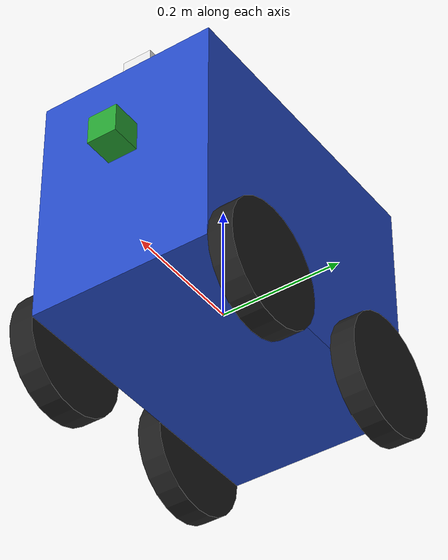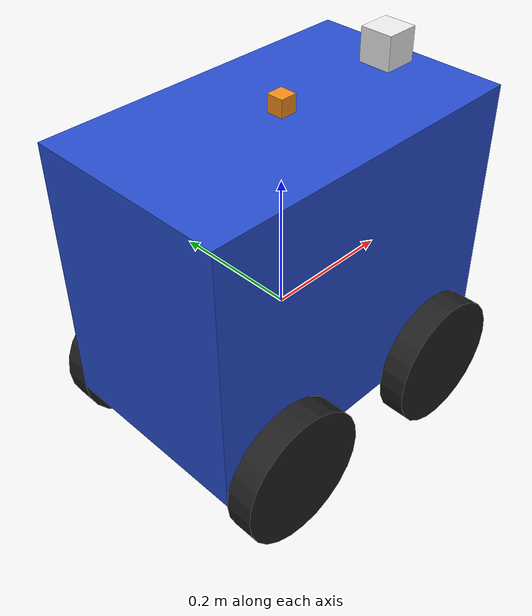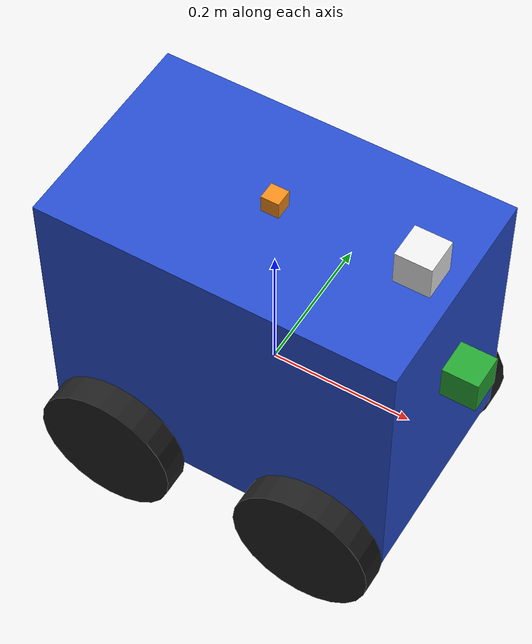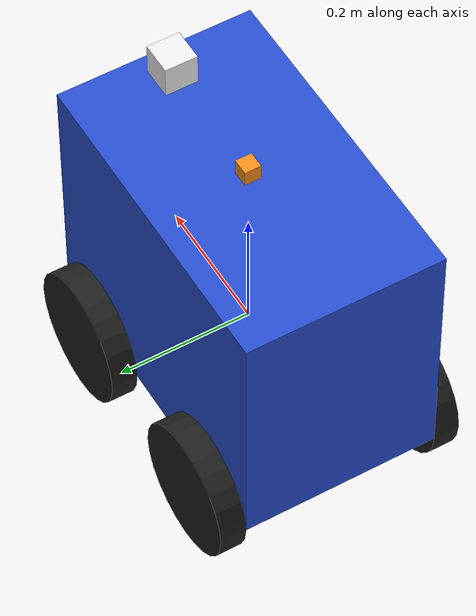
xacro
<?xml version="1.0"?>
<robot name="m2wr" xmlns:xacro="http://www.ros.org/wiki/xacro">

  <xacro:include filename="$(find my_robot_urdf)/urdf/mybot.gazebo" />
  <xacro:include filename="$(find my_robot_urdf)/urdf/materials.xacro" />
  <xacro:include filename="$(find my_robot_urdf)/urdf/macros.xacro" />

 <link name="link_chassis">
    <!-- body -->
    <collision name="collision_chassis">
      <geometry>
        <box size="0.5 0.3 0.4"/>
      </geometry>
    </collision>
    <visual>
      <origin rpy="0 0 0" xyz="0 0 0.1"/>
      <geometry>
        <box size="0.5 0.3 0.4"/>
      </geometry>
      <material name="blue"/>
    </visual>
  </link>

  <!-- Inertial link stores the robot's inertial information -->
  <link name="inertial_link">
    <inertial>
      <mass value="45" />
      <origin xyz="-0.00065 -0.085 0.062" />
      <inertia ixx="0.6022" ixy="-0.02364" ixz="-0.1197" iyy="1.7386" iyz="-0.001544" izz="2.0296" />
    </inertial>
  </link>

  <joint name="inertial_joint" type="fixed">
    <origin xyz="0 0 0" rpy="0 0 0" />
    <parent link="link_chassis" />
    <child link="inertial_link" />
  </joint>

  <!-- Wheels and Joints -->
  <link name="link_right_wheel">
    <inertial>
      <mass value="2"/>
      <origin rpy="0 1.5707 1.5707" xyz="0 0 0"/>
      <inertia ixx="0.000526666666667" ixy="0" ixz="0" iyy="0.000526666666667" iyz="0" izz="0.001"/>
    </inertial>
    <collision name="link_right_wheel_collision">
      <origin rpy="0 1.5707 1.5707" xyz="0 0 0"/>
      <geometry>
        <cylinder length="0.04" radius="0.1"/>
      </geometry>
    </collision>
    <visual name="link_right_wheel_visual">
      <origin rpy="0 1.5707 1.5707" xyz="0 0 0"/>
      <geometry>
        <cylinder length="0.04" radius="0.1"/>
      </geometry>
	  <material name="black"/>
    </visual>
  </link>

  <joint name="joint_right_wheel" type="continuous">
    <origin rpy="0 0 0" xyz="-0.15 0.17 -0.1"/>
    <child link="link_right_wheel"/>
    <parent link="link_chassis"/>
    <axis rpy="0 0 0" xyz="0 1 0"/>
    <limit effort="10000" velocity="1000"/>
    <joint_properties damping="1.0" friction="1.0"/>
  </joint>

  <link name="link_left_wheel">
    <inertial>
      <mass value="2"/>
      <origin rpy="0 1.5707 1.5707" xyz="0 0 0"/>
      <inertia ixx="0.000526666666667" ixy="0" ixz="0" iyy="0.000526666666667" iyz="0" izz="0.001"/>
    </inertial>
    <collision name="link_left_wheel_collision">
      <origin rpy="0 1.5707 1.5707" xyz="0 0 0"/>
      <geometry>
        <cylinder length="0.04" radius="0.1"/>
      </geometry>
    </collision>
    <visual name="link_left_wheel_visual">
      <origin rpy="0 1.5707 1.5707" xyz="0 0 0"/>
      <geometry>
        <cylinder length="0.04" radius="0.1"/>
      </geometry>
	  <material name="black"/>
    </visual>
  </link>

  <joint name="joint_left_wheel" type="continuous">
    <origin rpy="0 0 0" xyz="-0.15 -0.17 -0.1"/>
    <child link="link_left_wheel"/>
    <parent link="link_chassis"/>
    <axis rpy="0 0 0" xyz="0 1 0"/>
    <limit effort="10000" velocity="1000"/>
    <joint_properties damping="1.0" friction="1.0"/>
  </joint>

    <link name="link_back_right_wheel">
    <inertial>
      <mass value="2"/>
      <origin rpy="0 1.5707 1.5707" xyz="0 0 0"/>
      <inertia ixx="0.000526666666667" ixy="0" ixz="0" iyy="0.000526666666667" iyz="0" izz="0.001"/>
    </inertial>
    <collision name="link_back_right_wheel_collision">
      <origin rpy="0 1.5707 1.5707" xyz="0 0 0"/>
      <geometry>
        <cylinder length="0.04" radius="0.1"/>
      </geometry>
    </collision>
    <visual name="link_back_right_wheel_visual">
      <origin rpy="0 1.5707 1.5707" xyz="0 0 0"/>
      <geometry>
        <cylinder length="0.04" radius="0.1"/>
      </geometry>
	  <material name="black"/>
    </visual>
  </link>

    <joint name="joint_back_right_wheel" type="continuous">
    <origin rpy="0 0 0" xyz="0.15 0.17 -0.1"/>
    <child link="link_back_right_wheel"/>
    <parent link="link_chassis"/>
    <axis rpy="0 0 0" xyz="0 1 0"/>
    <limit effort="10000" velocity="1000"/>
    <joint_properties damping="1.0" friction="1.0"/>
  </joint>

    <link name="link_back_left_wheel">
    <inertial>
      <mass value="2"/>
      <origin rpy="0 1.5707 1.5707" xyz="0 0 0"/>
      <inertia ixx="0.000526666666667" ixy="0" ixz="0" iyy="0.000526666666667" iyz="0" izz="0.001"/>
    </inertial>
    <collision name="link_back_left_wheel_collision">
      <origin rpy="0 1.5707 1.5707" xyz="0 0 0"/>
      <geometry>
        <cylinder length="0.04" radius="0.1"/>
      </geometry>
    </collision>
    <visual name="link_back_left_wheel_visual">
      <origin rpy="0 1.5707 1.5707" xyz="0 0 0"/>
      <geometry>
        <cylinder length="0.04" radius="0.1"/>
      </geometry>
	  <material name="black"/>
    </visual>
  </link>

  <joint name="joint_back_left_wheel" type="continuous">
    <origin rpy="0 0 0" xyz="0.15 -0.17 -0.1"/>
    <child link="link_back_left_wheel"/>
    <parent link="link_chassis"/>
    <axis rpy="0 0 0" xyz="0 1 0"/>
    <limit effort="10000" velocity="1000"/>
    <joint_properties damping="1.0" friction="1.0"/>
  </joint>

  <!-- Camera-->
    <link name="camera">
    <collision>
      <origin xyz="0 0 0" rpy="0 0 0"/>
      <geometry>
        <box size="0.05 0.05 0.05"/>
      </geometry>
    </collision>
    <visual>
      <origin xyz="0 0 0" rpy="0 0 0"/>
      <geometry>
        <box size="0.05 0.05 0.05"/>
      </geometry>
      <material name="green"/>
    </visual>
    <inertial>
      <mass value="0.05" />
      <origin xyz="0 0 0" rpy="0 0 0"/>
      <inertia ixx="1e-6" ixy="0" ixz="0" iyy="1e-6" iyz="0" izz="1e-6" />
    </inertial>
  </link>

  <joint name="camera_joint" type="fixed">
    <axis xyz="0 1 0" />
    <origin xyz="0.275 0 0.15" rpy="0 0 0"/>
    <parent link="link_chassis"/>
    <child link="camera"/>
  </joint>

  <!-- Lidar Scanner-->
  <link name="laser_link">
  <collision>
   <origin xyz="0 0 0" rpy="0 0 0"/>
   <geometry>
    <box size="0.1 0.1 0.1"/>
   </geometry>
  </collision>
  <visual>
   <origin xyz="0 0 0" rpy="0 0 0"/>
    <geometry>
     <box size="0.05 0.05 0.05"/>
    </geometry>
	<material name="white"/>
  </visual>
  <inertial>
    <mass value="1e-5" />
    <origin xyz="0 0 0" rpy="0 0 0"/>
    <inertia ixx="1e-6" ixy="0" ixz="0" iyy="1e-6" iyz="0" izz="1e-6" />
  </inertial>
</link>

<joint name="laser_joint" type="fixed">
<axis xyz="0 0 0" />
<origin xyz="0.2 0 0.325" rpy="0 0 0"/>
<parent link="link_chassis"/>
<child link="laser_link"/>
</joint>

<!-- IMU -->
  <link name="imu_link">
  <collision>
   <origin xyz="0 0 0" rpy="0 0 0"/>
   <geometry>
    <box size="0.025 0.025 0.025"/>
   </geometry>
  </collision>
  <visual>
   <origin xyz="0 0 0" rpy="0 0 0"/>
    <geometry>
     <box size="0.025 0.025 0.025"/>
    </geometry>
	<material name="orange"/>
  </visual>
  <inertial>
    <mass value="1e-5" />
    <origin xyz="0 0 0" rpy="0 0 0"/>
    <inertia ixx="1e-6" ixy="0" ixz="0" iyy="1e-6" iyz="0" izz="1e-6" />
  </inertial>
</link>

<joint name="imu_joint" type="fixed">
<axis xyz="0 0 0" />
<origin xyz="0.0 0 0.3125" rpy="0 0 0"/>
<parent link="link_chassis"/>
<child link="imu_link"/>
</joint>

</robot>
